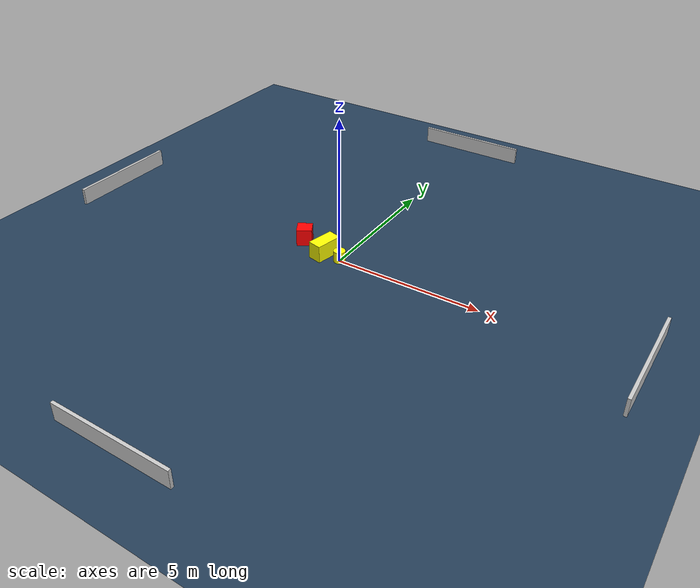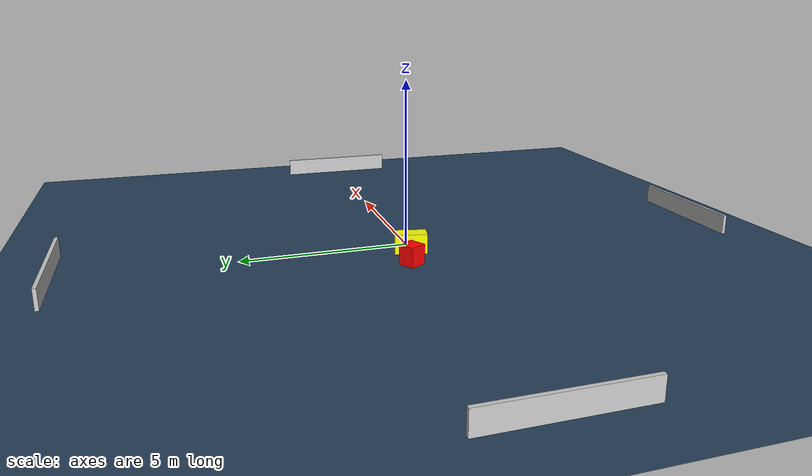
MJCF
<?xml version="1.0" ?>
<mujoco model="generated_environment">
  <option timestep="0.01" integrator="RK4" cone="elliptic"/>
  <default>
    <geom density="1"/>
  </default>
  <asset>
    <texture builtin="gradient" height="3072" name="skybox" rgb1="0.3 0.5 0.7" rgb2="0 0 0" type="skybox" width="512"/>
    <texture builtin="checker" height="300" name="groundplane" rgb1="0.2 0.3 0.4" rgb2="0.1 0.2 0.3" type="2d" width="300"/>
    <material name="groundplane" reflectance="0.2" texrepeat="5 5" texture="groundplane"/>
  </asset>
  <worldbody>
    <light dir="0 0 -1" directional="true" pos="0 0 1.5"/>
    <geom condim="3" friction="0.5 0.005 0.001" material="groundplane" name="floor" pos="0 0 0" size="0 0 0.05" type="plane"/>
    <body name="walls">
      <geom name="wall_1" condim="4" pos="-10.0 0.0 0.3" rgba="0.800000011920929 0.800000011920929 0.800000011920929 1.0" size="0.05 2.0 0.3" type="box"/>
      <geom name="wall_2" condim="4" pos="10.0 0.0 0.3" rgba="0.800000011920929 0.800000011920929 0.800000011920929 1.0" size="0.05 2.0 0.3" type="box"/>
      <geom name="wall_3" condim="4" pos="0.0 -10.0 0.3" rgba="0.800000011920929 0.800000011920929 0.800000011920929 1.0" size="2.0 0.05 0.3" type="box"/>
      <geom name="wall_4" condim="4" pos="0.0 10.0 0.3" rgba="0.800000011920929 0.800000011920929 0.800000011920929 1.0" size="2.0 0.05 0.3" type="box"/>
    </body>
    <body name="robot">
      <joint name="joint_x" type="slide" pos="0 0 0" axis="1 0 0"/>
      <joint name="joint_y" type="slide" pos="0 0 0" axis="0 1 0"/>
      <geom name="robot" type="cylinder" pos="0.0 0.0 0.2" size="0.2 0.2 0.0" mass="5.0" friction="1.0 0.005 0.0001" condim="4" rgba="1.0 1.0 0.0 1.0"/>
    </body>
    <body name="obstacle_1_movable">
      <geom name="obstacle_1_movable" condim="4" pos="-0.6203509359945206 0.048187582488266906 0.3" euler="0 0 257.72442953366755" friction="0.0 0.005 0.001" rgba="1.0 1.0 0.0 1.0" size="0.4803329219570594 0.24228948854457882 0.3" type="box" mass="0.1"/>
      <joint type="free"/>
    </body>
    <body name="obstacle_2_static">
      <geom name="obstacle_2_static" condim="4" pos="-1.6366421645430647 0.33479653472043175 0.3" euler="0 0 119.75481043684552" friction="0.0 0.005 0.001" rgba="1.0 0.0 0.0 1.0" size="0.25699712643475214 0.26085521596832284 0.3" type="box"/>
    </body>
  </worldbody>
  <actuator>
    <motor name="actuator_x" joint="joint_x" gear="1" ctrlrange="-1 1"/>
    <motor name="actuator_y" joint="joint_y" gear="1" ctrlrange="-1 1"/>
  </actuator>
</mujoco>
